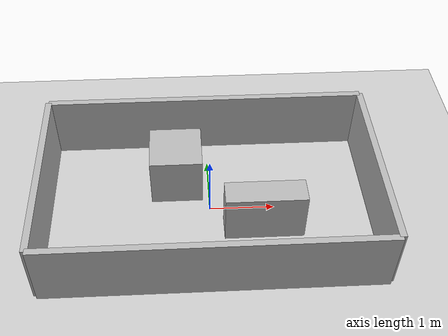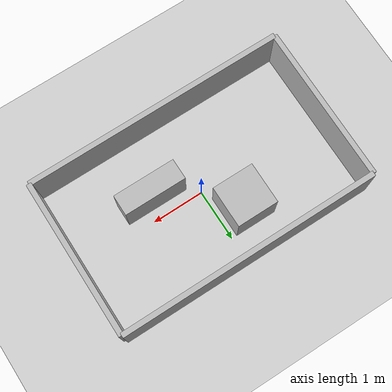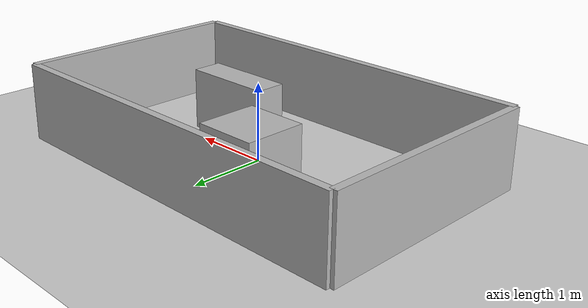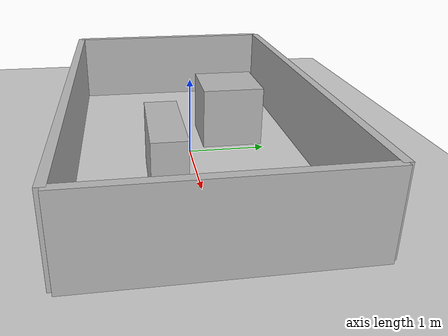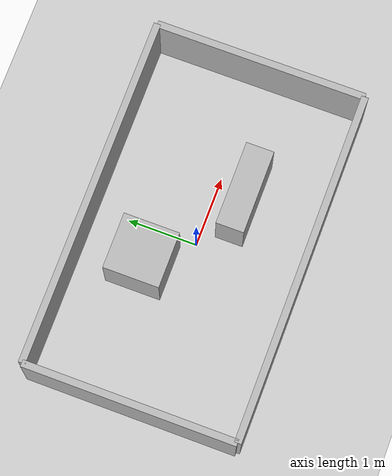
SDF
<?xml version="1.0" ?>
<sdf version="1.6">
  <world name="my_lab">
    <!-- Gravity, physics default omitted for brevity -->

    <!-- Ground plane -->
    <include><uri>model://ground_plane</uri></include>

    <!-- Four walls forming 5m x 3m rectangle.
         Walls are thin boxes; origin at (0,0). -->
    <!-- wall thickness and height -->
    <model name="wall_north">
      <static>true</static>
      <link name="link">
        <collision name="collision">
          <geometry><box><size>5 0.1 1.0</size></box></geometry>
          <pose>0 1.5 0.5 0 0 0</pose>
        </collision>
        <visual name="visual">
          <geometry><box><size>5 0.1 1.0</size></box></geometry>
          <pose>0 1.5 0.5 0 0 0</pose>
        </visual>
      </link>
    </model>
    <model name="wall_south">
      <static>true</static>
      <link name="link">
        <collision name="collision">
          <geometry><box><size>5 0.1 1.0</size></box></geometry>
          <pose>0 -1.5 0.5 0 0 0</pose>
        </collision>
        <visual name="visual">
          <geometry><box><size>5 0.1 1.0</size></box></geometry>
          <pose>0 -1.5 0.5 0 0 0</pose>
        </visual>
      </link>
    </model>
    <model name="wall_east">
      <static>true</static>
      <link name="link">
        <collision name="collision">
          <geometry><box><size>0.1 3 1.0</size></box></geometry>
          <pose>2.5 0 0.5 0 0 0</pose>
        </collision>
        <visual name="visual">
          <geometry><box><size>0.1 3 1.0</size></box></geometry>
          <pose>2.5 0 0.5 0 0 0</pose>
        </visual>
      </link>
    </model>
    <model name="wall_west">
      <static>true</static>
      <link name="link">
        <collision name="collision">
          <geometry><box><size>0.1 3 1.0</size></box></geometry>
          <pose>-2.5 0 0.5 0 0 0</pose>
        </collision>
        <visual name="visual">
          <geometry><box><size>0.1 3 1.0</size></box></geometry>
          <pose>-2.5 0 0.5 0 0 0</pose>
        </visual>
      </link>
    </model>

    <!-- 两个障碍：盒子（都比常见差速机器人大） -->
    <model name="obstacle_big1">
      <static>true</static>
      <link name="link">
        <collision name="collision">
          <geometry><box><size>0.8 0.8 0.8</size></box></geometry>
          <pose>-0.5 0.6 0.4 0 0 0</pose>
        </collision>
        <visual name="visual">
          <geometry><box><size>0.8 0.8 0.8</size></box></geometry>
          <pose>-0.5 0.6 0.4 0 0 0</pose>
        </visual>
      </link>
    </model>

    <model name="obstacle_big2">
      <static>true</static>
      <link name="link">
        <collision name="collision">
          <geometry><box><size>1.2 0.4 0.8</size></box></geometry>
          <pose>0.8 -0.4 0.4 0 0 0</pose>
        </collision>
        <visual name="visual">
          <geometry><box><size>1.2 0.4 0.8</size></box></geometry>
          <pose>0.8 -0.4 0.4 0 0 0</pose>
        </visual>
      </link>
    </model>

  </world>
</sdf>
